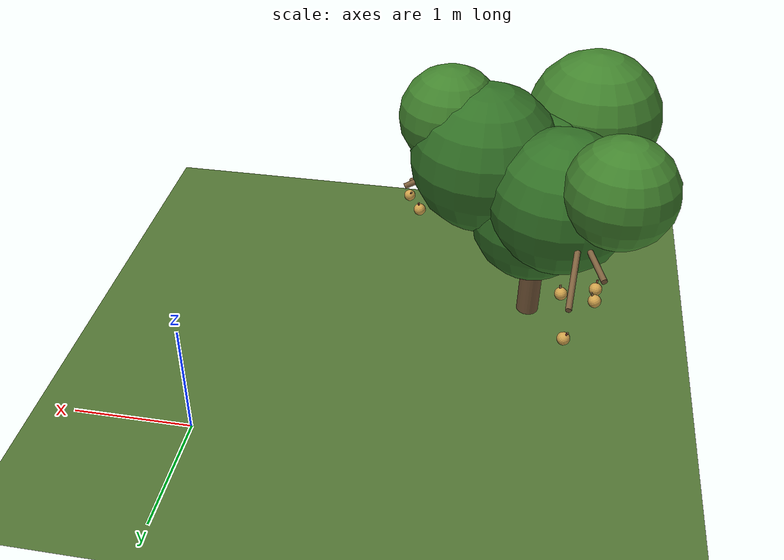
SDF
<sdf version="1.8">
 <world name="bagged_peach_orchard">
  <model name="ground">
   <static>true</static>
   <link name="link">
    <collision name="c">
     <geometry><plane><normal>0 0 1</normal><size>40.0 30.0</size></plane></geometry>
    </collision>
    <visual name="v">
     <geometry><plane><normal>0 0 1</normal><size>40.0 30.0</size></plane></geometry>
     <material>
      <ambient>0.1600 0.2300 0.1000 1</ambient>
      <diffuse>0.3200 0.4600 0.2000 1</diffuse>
      <specular>0.05 0.05 0.05 1</specular>
     </material>
    </visual>
   </link>
  </model>
  <model name="tree_r1_t1">
   <static>true</static>
   <link name="trunk">
    <visual name="trunk_v">
     <pose>-2.6032 -1.9987 0.3138 -0.0042 -0.0103 0.0000</pose>
     <geometry><cylinder><radius>0.0996</radius><length>0.6277</length></cylinder></geometry>
     <material>
      <ambient>0.2300 0.1700 0.1100 1</ambient>
      <diffuse>0.4600 0.3400 0.2200 1</diffuse>
      <specular>0.05 0.05 0.05 1</specular>
     </material>
    </visual>
    <collision name="trunk_v_c">
     <pose>-2.6032 -1.9987 0.3138 -0.0042 -0.0103 0.0000</pose>
     <geometry><cylinder><radius>0.0996</radius><length>0.6277</length></cylinder></geometry>
    </collision>
   </link>
   <link name="frame">
    <visual name="leader0_v">
     <pose>-2.1173 -2.0639 1.1878 0.1182 0.7144 0.0441</pose>
     <geometry><cylinder><radius>0.0500</radius><length>1.4932</length></cylinder></geometry>
     <material>
      <ambient>0.2300 0.1700 0.1100 1</ambient>
      <diffuse>0.4600 0.3400 0.2200 1</diffuse>
      <specular>0.05 0.05 0.05 1</specular>
     </material>
    </visual>
    <collision name="leader0_v_c">
     <pose>-2.1173 -2.0639 1.1878 0.1182 0.7144 0.0441</pose>
     <geometry><cylinder><radius>0.0500</radius><length>1.4932</length></cylinder></geometry>
    </collision>
    <visual name="leader1_v">
     <pose>-2.8658 -1.6284 1.1611 -0.6052 -0.3803 0.1200</pose>
     <geometry><cylinder><radius>0.0500</radius><length>1.3970</length></cylinder></geometry>
     <material>
      <ambient>0.2300 0.1700 0.1100 1</ambient>
      <diffuse>0.4600 0.3400 0.2200 1</diffuse>
      <specular>0.05 0.05 0.05 1</specular>
     </material>
    </visual>
    <collision name="leader1_v_c">
     <pose>-2.8658 -1.6284 1.1611 -0.6052 -0.3803 0.1200</pose>
     <geometry><cylinder><radius>0.0500</radius><length>1.3970</length></cylinder></geometry>
    </collision>
    <visual name="leader2_v">
     <pose>-2.7985 -2.4081 1.0493 0.7723 -0.3153 -0.1291</pose>
     <geometry><cylinder><radius>0.0500</radius><length>1.2383</length></cylinder></geometry>
     <material>
      <ambient>0.2300 0.1700 0.1100 1</ambient>
      <diffuse>0.4600 0.3400 0.2200 1</diffuse>
      <specular>0.05 0.05 0.05 1</specular>
     </material>
    </visual>
    <collision name="leader2_v_c">
     <pose>-2.7985 -2.4081 1.0493 0.7723 -0.3153 -0.1291</pose>
     <geometry><cylinder><radius>0.0500</radius><length>1.2383</length></cylinder></geometry>
    </collision>
    <visual name="branch0_v">
     <pose>-1.7518 -2.2881 1.0847 2.1071 0.9247 1.4388</pose>
     <geometry><cylinder><radius>0.0250</radius><length>0.8538</length></cylinder></geometry>
     <material>
      <ambient>0.2500 0.1900 0.1200 1</ambient>
      <diffuse>0.5000 0.3800 0.2400 1</diffuse>
      <specular>0.05 0.05 0.05 1</specular>
     </material>
    </visual>
    <visual name="branch1_v">
     <pose>-1.6610 -2.0212 1.3462 -2.5115 1.0743 -2.1402</pose>
     <geometry><cylinder><radius>0.0250</radius><length>0.5233</length></cylinder></geometry>
     <material>
      <ambient>0.2500 0.1900 0.1200 1</ambient>
      <diffuse>0.5000 0.3800 0.2400 1</diffuse>
      <specular>0.05 0.05 0.05 1</specular>
     </material>
    </visual>
    <visual name="branch2_v">
     <pose>-3.0344 -1.2309 1.2479 -1.6780 -0.3352 0.3724</pose>
     <geometry><cylinder><radius>0.0250</radius><length>0.6689</length></cylinder></geometry>
     <material>
      <ambient>0.2500 0.1900 0.1200 1</ambient>
      <diffuse>0.5000 0.3800 0.2400 1</diffuse>
      <specular>0.05 0.05 0.05 1</specular>
     </material>
    </visual>
    <visual name="branch3_v">
     <pose>-2.9201 -1.0805 1.2227 -1.8380 0.0728 -0.0954</pose>
     <geometry><cylinder><radius>0.0250</radius><length>0.8833</length></cylinder></geometry>
     <material>
      <ambient>0.2500 0.1900 0.1200 1</ambient>
      <diffuse>0.5000 0.3800 0.2400 1</diffuse>
      <specular>0.05 0.05 0.05 1</specular>
     </material>
    </visual>
    <visual name="branch4_v">
     <pose>-3.0885 -2.6666 1.0406 2.3541 -0.8825 -1.6988</pose>
     <geometry><cylinder><radius>0.0250</radius><length>0.6020</length></cylinder></geometry>
     <material>
      <ambient>0.2500 0.1900 0.1200 1</ambient>
      <diffuse>0.5000 0.3800 0.2400 1</diffuse>
      <specular>0.05 0.05 0.05 1</specular>
     </material>
    </visual>
    <visual name="branch5_v">
     <pose>-3.1177 -2.6013 1.1312 2.2787 -1.2647 -2.0197</pose>
     <geometry><cylinder><radius>0.0250</radius><length>0.5406</length></cylinder></geometry>
     <material>
      <ambient>0.2500 0.1900 0.1200 1</ambient>
      <diffuse>0.5000 0.3800 0.2400 1</diffuse>
      <specular>0.05 0.05 0.05 1</specular>
     </material>
    </visual>
    <visual name="twig0_v">
     <pose>-3.0659 -0.9236 1.0775 0.1227 0.4355 0.0272</pose>
     <geometry><cylinder><radius>0.0080</radius><length>0.0260</length></cylinder></geometry>
     <material>
      <ambient>0.2750 0.2250 0.1400 1</ambient>
      <diffuse>0.5500 0.4500 0.2800 1</diffuse>
      <specular>0.05 0.05 0.05 1</specular>
     </material>
    </visual>
    <visual name="twig1_v">
     <pose>-1.5572 -1.9579 1.0706 -0.1418 0.1384 -0.0098</pose>
     <geometry><cylinder><radius>0.0080</radius><length>0.0260</length></cylinder></geometry>
     <material>
      <ambient>0.2750 0.2250 0.1400 1</ambient>
      <diffuse>0.5500 0.4500 0.2800 1</diffuse>
      <specular>0.05 0.05 0.05 1</specular>
     </material>
    </visual>
    <visual name="twig2_v">
     <pose>-3.2098 -2.5792 0.9645 0.3478 -0.2543 -0.0449</pose>
     <geometry><cylinder><radius>0.0080</radius><length>0.0260</length></cylinder></geometry>
     <material>
      <ambient>0.2750 0.2250 0.1400 1</ambient>
      <diffuse>0.5500 0.4500 0.2800 1</diffuse>
      <specular>0.05 0.05 0.05 1</specular>
     </material>
    </visual>
    <visual name="twig3_v">
     <pose>-3.1823 -1.2652 1.5069 0.4742 0.0538 0.0130</pose>
     <geometry><cylinder><radius>0.0080</radius><length>0.0260</length></cylinder></geometry>
     <material>
      <ambient>0.2750 0.2250 0.1400 1</ambient>
      <diffuse>0.5500 0.4500 0.2800 1</diffuse>
      <specular>0.05 0.05 0.05 1</specular>
     </material>
    </visual>
    <visual name="twig4_v">
     <pose>-2.9044 -0.6592 0.8707 -0.1981 -0.3581 0.0360</pose>
     <geometry><cylinder><radius>0.0080</radius><length>0.0260</length></cylinder></geometry>
     <material>
      <ambient>0.2750 0.2250 0.1400 1</ambient>
      <diffuse>0.5500 0.4500 0.2800 1</diffuse>
      <specular>0.05 0.05 0.05 1</specular>
     </material>
    </visual>
    <visual name="twig5_v">
     <pose>-3.2519 -2.7476 0.8584 -0.4397 0.1339 -0.0300</pose>
     <geometry><cylinder><radius>0.0080</radius><length>0.0260</length></cylinder></geometry>
     <material>
      <ambient>0.2750 0.2250 0.1400 1</ambient>
      <diffuse>0.5500 0.4500 0.2800 1</diffuse>
      <specular>0.05 0.05 0.05 1</specular>
     </material>
    </visual>
    <visual name="twig6_v">
     <pose>-3.0440 -2.7886 1.3626 0.2239 -0.4893 -0.0561</pose>
     <geometry><cylinder><radius>0.0080</radius><length>0.0260</length></cylinder></geometry>
     <material>
      <ambient>0.2750 0.2250 0.1400 1</ambient>
      <diffuse>0.5500 0.4500 0.2800 1</diffuse>
      <specular>0.05 0.05 0.05 1</specular>
     </material>
    </visual>
    <visual name="twig7_v">
     <pose>-3.1153 -1.1728 1.0197 0.5413 -0.1164 -0.0323</pose>
     <geometry><cylinder><radius>0.0080</radius><length>0.0260</length></cylinder></geometry>
     <material>
      <ambient>0.2750 0.2250 0.1400 1</ambient>
      <diffuse>0.5500 0.4500 0.2800 1</diffuse>
      <specular>0.05 0.05 0.05 1</specular>
     </material>
    </visual>
    <visual name="twig8_v">
     <pose>-1.6672 -2.3821 0.8912 0.1288 0.0639 0.0041</pose>
     <geometry><cylinder><radius>0.0080</radius><length>0.0260</length></cylinder></geometry>
     <material>
      <ambient>0.2750 0.2250 0.1400 1</ambient>
      <diffuse>0.5500 0.4500 0.2800 1</diffuse>
      <specular>0.05 0.05 0.05 1</specular>
     </material>
    </visual>
    <visual name="twig9_v">
     <pose>-3.4785 -2.6725 0.8862 -0.3782 0.6521 -0.1293</pose>
     <geometry><cylinder><radius>0.0080</radius><length>0.0260</length></cylinder></geometry>
     <material>
      <ambient>0.2750 0.2250 0.1400 1</ambient>
      <diffuse>0.5500 0.4500 0.2800 1</diffuse>
      <specular>0.05 0.05 0.05 1</specular>
     </material>
    </visual>
    <visual name="twig10_v">
     <pose>-2.8276 -1.0669 1.0094 0.1396 0.1454 0.0102</pose>
     <geometry><cylinder><radius>0.0080</radius><length>0.0260</length></cylinder></geometry>
     <material>
      <ambient>0.2750 0.2250 0.1400 1</ambient>
      <diffuse>0.5500 0.4500 0.2800 1</diffuse>
      <specular>0.05 0.05 0.05 1</specular>
     </material>
    </visual>
    <visual name="twig11_v">
     <pose>-1.4150 -2.5010 0.8216 -0.6245 -0.2751 0.0893</pose>
     <geometry><cylinder><radius>0.0080</radius><length>0.0260</length></cylinder></geometry>
     <material>
      <ambient>0.2750 0.2250 0.1400 1</ambient>
      <diffuse>0.5500 0.4500 0.2800 1</diffuse>
      <specular>0.05 0.05 0.05 1</specular>
     </material>
    </visual>
   </link>
   <link name="canopy">
    <visual name="blob0_v">
     <pose>-2.0990 -2.1908 1.4740 0 0 0</pose>
     <geometry><sphere><radius>0.6599</radius></sphere></geometry>
     <material>
      <ambient>0.1000 0.2250 0.0750 1</ambient>
      <diffuse>0.2000 0.4500 0.1500 1</diffuse>
      <specular>0.05 0.05 0.05 1</specular>
     </material>
    </visual>
    <collision name="blob0_v_c">
     <pose>-2.0990 -2.1908 1.4740 0 0 0</pose>
     <geometry><sphere><radius>0.6071</radius></sphere></geometry>
    </collision>
    <visual name="blob1_v">
     <pose>-1.7701 -2.3134 1.7767 0 0 0</pose>
     <geometry><sphere><radius>0.4534</radius></sphere></geometry>
     <material>
      <ambient>0.1300 0.2600 0.0900 1</ambient>
      <diffuse>0.2600 0.5200 0.1800 1</diffuse>
      <specular>0.05 0.05 0.05 1</specular>
     </material>
    </visual>
    <collision name="blob1_v_c">
     <pose>-1.7701 -2.3134 1.7767 0 0 0</pose>
     <geometry><sphere><radius>0.4172</radius></sphere></geometry>
    </collision>
    <visual name="blob2_v">
     <pose>-2.7797 -1.7888 1.3558 0 0 0</pose>
     <geometry><sphere><radius>0.6220</radius></sphere></geometry>
     <material>
      <ambient>0.1000 0.2250 0.0750 1</ambient>
      <diffuse>0.2000 0.4500 0.1500 1</diffuse>
      <specular>0.05 0.05 0.05 1</specular>
     </material>
    </visual>
    <collision name="blob2_v_c">
     <pose>-2.7797 -1.7888 1.3558 0 0 0</pose>
     <geometry><sphere><radius>0.5723</radius></sphere></geometry>
    </collision>
    <visual name="blob3_v">
     <pose>-3.2097 -1.4045 1.7260 0 0 0</pose>
     <geometry><sphere><radius>0.4597</radius></sphere></geometry>
     <material>
      <ambient>0.1300 0.2600 0.0900 1</ambient>
      <diffuse>0.2600 0.5200 0.1800 1</diffuse>
      <specular>0.05 0.05 0.05 1</specular>
     </material>
    </visual>
    <collision name="blob3_v_c">
     <pose>-3.2097 -1.4045 1.7260 0 0 0</pose>
     <geometry><sphere><radius>0.4229</radius></sphere></geometry>
    </collision>
    <visual name="blob4_v">
     <pose>-2.6078 -2.3908 1.2201 0 0 0</pose>
     <geometry><sphere><radius>0.5838</radius></sphere></geometry>
     <material>
      <ambient>0.1000 0.2250 0.0750 1</ambient>
      <diffuse>0.2000 0.4500 0.1500 1</diffuse>
      <specular>0.05 0.05 0.05 1</specular>
     </material>
    </visual>
    <collision name="blob4_v_c">
     <pose>-2.6078 -2.3908 1.2201 0 0 0</pose>
     <geometry><sphere><radius>0.5371</radius></sphere></geometry>
    </collision>
    <visual name="blob5_v">
     <pose>-3.0134 -2.8824 1.5875 0 0 0</pose>
     <geometry><sphere><radius>0.6068</radius></sphere></geometry>
     <material>
      <ambient>0.1300 0.2600 0.0900 1</ambient>
      <diffuse>0.2600 0.5200 0.1800 1</diffuse>
      <specular>0.05 0.05 0.05 1</specular>
     </material>
    </visual>
    <collision name="blob5_v_c">
     <pose>-3.0134 -2.8824 1.5875 0 0 0</pose>
     <geometry><sphere><radius>0.5583</radius></sphere></geometry>
    </collision>
    <visual name="blob6_v">
     <pose>-2.5702 -1.9561 1.0440 0 0 0</pose>
     <geometry><sphere><radius>0.5476</radius></sphere></geometry>
     <material>
      <ambient>0.1000 0.2250 0.0750 1</ambient>
      <diffuse>0.2000 0.4500 0.1500 1</diffuse>
      <specular>0.05 0.05 0.05 1</specular>
     </material>
    </visual>
    <collision name="blob6_v_c">
     <pose>-2.5702 -1.9561 1.0440 0 0 0</pose>
     <geometry><sphere><radius>0.5038</radius></sphere></geometry>
    </collision>
   </link>
   <link name="bag_r1_t1_b00">
    <pose>-3.0713 -0.9222 1.0658 0.1227 0.4355 0.0272</pose>
    <visual name="paper">
     <pose>0 0 -0.0520 0 0 0</pose>
     <geometry><sphere><radius>0.0520</radius></sphere></geometry>
     <material>
      <ambient>0.4100 0.3200 0.1500 1</ambient>
      <diffuse>0.8200 0.6400 0.3000 1</diffuse>
      <specular>0.05 0.05 0.05 1</specular>
     </material>
    </visual>
    <visual name="twist">
     <pose>0 0 0.0100 0 0 0</pose>
     <geometry><cylinder><radius>0.0080</radius><length>0.0260</length></cylinder></geometry>
     <material>
      <ambient>0.2750 0.1000 0.0750 1</ambient>
      <diffuse>0.5500 0.2000 0.1500 1</diffuse>
      <specular>0.05 0.05 0.05 1</specular>
     </material>
    </visual>
    <collision name="paper_c">
     <pose>0 0 -0.0520 0 0 0</pose>
     <geometry><sphere><radius>0.0520</radius></sphere></geometry>
    </collision>
   </link>
   <link name="bag_r1_t1_b01">
    <pose>-1.5590 -1.9597 1.0578 -0.1418 0.1384 -0.0098</pose>
    <visual name="paper">
     <pose>0 0 -0.0520 0 0 0</pose>
     <geometry><sphere><radius>0.0520</radius></sphere></geometry>
     <material>
      <ambient>0.4100 0.3200 0.1500 1</ambient>
      <diffuse>0.8200 0.6400 0.3000 1</diffuse>
      <specular>0.05 0.05 0.05 1</specular>
     </material>
    </visual>
    <visual name="twist">
     <pose>0 0 0.0100 0 0 0</pose>
     <geometry><cylinder><radius>0.0080</radius><length>0.0260</length></cylinder></geometry>
     <material>
      <ambient>0.2750 0.1000 0.0750 1</ambient>
      <diffuse>0.5500 0.2000 0.1500 1</diffuse>
      <specular>0.05 0.05 0.05 1</specular>
     </material>
    </visual>
    <collision name="paper_c">
     <pose>0 0 -0.0520 0 0 0</pose>
     <geometry><sphere><radius>0.0520</radius></sphere></geometry>
    </collision>
   </link>
   <link name="bag_r1_t1_b02">
    <pose>-3.2066 -2.5749 0.9527 0.3478 -0.2543 -0.0449</pose>
    <visual name="paper">
     <pose>0 0 -0.0520 0 0 0</pose>
     <geometry><sphere><radius>0.0520</radius></sphere></geometry>
     <material>
      <ambient>0.4100 0.3200 0.1500 1</ambient>
      <diffuse>0.8200 0.6400 0.3000 1</diffuse>
      <specular>0.05 0.05 0.05 1</specular>
     </material>
    </visual>
    <visual name="twist">
     <pose>0 0 0.0100 0 0 0</pose>
     <geometry><cylinder><radius>0.0080</radius><length>0.0260</length></cylinder></geometry>
     <material>
      <ambient>0.2750 0.1000 0.0750 1</ambient>
      <diffuse>0.5500 0.2000 0.1500 1</diffuse>
      <specular>0.05 0.05 0.05 1</specular>
     </material>
    </visual>
    <collision name="paper_c">
     <pose>0 0 -0.0520 0 0 0</pose>
     <geometry><sphere><radius>0.0520</radius></sphere></geometry>
    </collision>
   </link>
   <link name="bag_r1_t1_b03">
    <pose>-3.1830 -1.2592 1.4954 0.4742 0.0538 0.0130</pose>
    <visual name="paper">
     <pose>0 0 -0.0520 0 0 0</pose>
     <geometry><sphere><radius>0.0520</radius></sphere></geometry>
     <material>
      <ambient>0.4100 0.3200 0.1500 1</ambient>
      <diffuse>0.8200 0.6400 0.3000 1</diffuse>
      <specular>0.05 0.05 0.05 1</specular>
     </material>
    </visual>
    <visual name="twist">
     <pose>0 0 0.0100 0 0 0</pose>
     <geometry><cylinder><radius>0.0080</radius><length>0.0260</length></cylinder></geometry>
     <material>
      <ambient>0.2750 0.1000 0.0750 1</ambient>
      <diffuse>0.5500 0.2000 0.1500 1</diffuse>
      <specular>0.05 0.05 0.05 1</specular>
     </material>
    </visual>
    <collision name="paper_c">
     <pose>0 0 -0.0520 0 0 0</pose>
     <geometry><sphere><radius>0.0520</radius></sphere></geometry>
    </collision>
   </link>
   <link name="bag_r1_t1_b04">
    <pose>-2.8998 -0.6616 0.8587 -0.1981 -0.3581 0.0360</pose>
    <visual name="paper">
     <pose>0 0 -0.0520 0 0 0</pose>
     <geometry><sphere><radius>0.0520</radius></sphere></geometry>
     <material>
      <ambient>0.4100 0.3200 0.1500 1</ambient>
      <diffuse>0.8200 0.6400 0.3000 1</diffuse>
      <specular>0.05 0.05 0.05 1</specular>
     </material>
    </visual>
    <visual name="twist">
     <pose>0 0 0.0100 0 0 0</pose>
     <geometry><cylinder><radius>0.0080</radius><length>0.0260</length></cylinder></geometry>
     <material>
      <ambient>0.2750 0.1000 0.0750 1</ambient>
      <diffuse>0.5500 0.2000 0.1500 1</diffuse>
      <specular>0.05 0.05 0.05 1</specular>
     </material>
    </visual>
    <collision name="paper_c">
     <pose>0 0 -0.0520 0 0 0</pose>
     <geometry><sphere><radius>0.0520</radius></sphere></geometry>
    </collision>
   </link>
   <link name="bag_r1_t1_b05">
    <pose>-3.2536 -2.7531 0.8468 -0.4397 0.1339 -0.0300</pose>
    <visual name="paper">
     <pose>0 0 -0.0520 0 0 0</pose>
     <geometry><sphere><radius>0.0520</radius></sphere></geometry>
     <material>
      <ambient>0.4100 0.3200 0.1500 1</ambient>
      <diffuse>0.8200 0.6400 0.3000 1</diffuse>
      <specular>0.05 0.05 0.05 1</specular>
     </material>
    </visual>
    <visual name="twist">
     <pose>0 0 0.0100 0 0 0</pose>
     <geometry><cylinder><radius>0.0080</radius><length>0.0260</length></cylinder></geometry>
     <material>
      <ambient>0.2750 0.1000 0.0750 1</ambient>
      <diffuse>0.5500 0.2000 0.1500 1</diffuse>
      <specular>0.05 0.05 0.05 1</specular>
     </material>
    </visual>
    <collision name="paper_c">
     <pose>0 0 -0.0520 0 0 0</pose>
     <geometry><sphere><radius>0.0520</radius></sphere></geometry>
    </collision>
   </link>
   <link name="bag_r1_t1_b06">
    <pose>-3.0379 -2.7861 1.3515 0.2239 -0.4893 -0.0561</pose>
    <visual name="paper">
     <pose>0 0 -0.0520 0 0 0</pose>
     <geometry><sphere><radius>0.0520</radius></sphere></geometry>
     <material>
      <ambient>0.4100 0.3200 0.1500 1</ambient>
      <diffuse>0.8200 0.6400 0.3000 1</diffuse>
      <specular>0.05 0.05 0.05 1</specular>
     </material>
    </visual>
    <visual name="twist">
     <pose>0 0 0.0100 0 0 0</pose>
     <geometry><cylinder><radius>0.0080</radius><length>0.0260</length></cylinder></geometry>
     <material>
      <ambient>0.2750 0.1000 0.0750 1</ambient>
      <diffuse>0.5500 0.2000 0.1500 1</diffuse>
      <specular>0.05 0.05 0.05 1</specular>
     </material>
    </visual>
    <collision name="paper_c">
     <pose>0 0 -0.0520 0 0 0</pose>
     <geometry><sphere><radius>0.0520</radius></sphere></geometry>
    </collision>
   </link>
   <link name="bag_r1_t1_b07">
    <pose>-3.1137 -1.1662 1.0087 0.5413 -0.1164 -0.0323</pose>
    <visual name="paper">
     <pose>0 0 -0.0520 0 0 0</pose>
     <geometry><sphere><radius>0.0520</radius></sphere></geometry>
     <material>
      <ambient>0.4100 0.3200 0.1500 1</ambient>
      <diffuse>0.8200 0.6400 0.3000 1</diffuse>
      <specular>0.05 0.05 0.05 1</specular>
     </material>
    </visual>
    <visual name="twist">
     <pose>0 0 0.0100 0 0 0</pose>
     <geometry><cylinder><radius>0.0080</radius><length>0.0260</length></cylinder></geometry>
     <material>
      <ambient>0.2750 0.1000 0.0750 1</ambient>
      <diffuse>0.5500 0.2000 0.1500 1</diffuse>
      <specular>0.05 0.05 0.05 1</specular>
     </material>
    </visual>
    <collision name="paper_c">
     <pose>0 0 -0.0520 0 0 0</pose>
     <geometry><sphere><radius>0.0520</radius></sphere></geometry>
    </collision>
   </link>
   <link name="bag_r1_t1_b08">
    <pose>-1.6680 -2.3804 0.8784 0.1288 0.0639 0.0041</pose>
    <visual name="paper">
     <pose>0 0 -0.0520 0 0 0</pose>
     <geometry><sphere><radius>0.0520</radius></sphere></geometry>
     <material>
      <ambient>0.4100 0.3200 0.1500 1</ambient>
      <diffuse>0.8200 0.6400 0.3000 1</diffuse>
      <specular>0.05 0.05 0.05 1</specular>
     </material>
    </visual>
    <visual name="twist">
     <pose>0 0 0.0100 0 0 0</pose>
     <geometry><cylinder><radius>0.0080</radius><length>0.0260</length></cylinder></geometry>
     <material>
      <ambient>0.2750 0.1000 0.0750 1</ambient>
      <diffuse>0.5500 0.2000 0.1500 1</diffuse>
      <specular>0.05 0.05 0.05 1</specular>
     </material>
    </visual>
    <collision name="paper_c">
     <pose>0 0 -0.0520 0 0 0</pose>
     <geometry><sphere><radius>0.0520</radius></sphere></geometry>
    </collision>
   </link>
   <link name="bag_r1_t1_b09">
    <pose>-3.4864 -2.6764 0.8766 -0.3782 0.6521 -0.1293</pose>
    <visual name="paper">
     <pose>0 0 -0.0520 0 0 0</pose>
     <geometry><sphere><radius>0.0520</radius></sphere></geometry>
     <material>
      <ambient>0.4100 0.3200 0.1500 1</ambient>
      <diffuse>0.8200 0.6400 0.3000 1</diffuse>
      <specular>0.05 0.05 0.05 1</specular>
     </material>
    </visual>
    <visual name="twist">
     <pose>0 0 0.0100 0 0 0</pose>
     <geometry><cylinder><radius>0.0080</radius><length>0.0260</length></cylinder></geometry>
     <material>
      <ambient>0.2750 0.1000 0.0750 1</ambient>
      <diffuse>0.5500 0.2000 0.1500 1</diffuse>
      <specular>0.05 0.05 0.05 1</specular>
     </material>
    </visual>
    <collision name="paper_c">
     <pose>0 0 -0.0520 0 0 0</pose>
     <geometry><sphere><radius>0.0520</radius></sphere></geometry>
    </collision>
   </link>
   <link name="bag_r1_t1_b10">
    <pose>-2.8295 -1.0652 0.9966 0.1396 0.1454 0.0102</pose>
    <visual name="paper">
     <pose>0 0 -0.0520 0 0 0</pose>
     <geometry><sphere><radius>0.0520</radius></sphere></geometry>
     <material>
      <ambient>0.4100 0.3200 0.1500 1</ambient>
      <diffuse>0.8200 0.6400 0.3000 1</diffuse>
      <specular>0.05 0.05 0.05 1</specular>
     </material>
    </visual>
    <visual name="twist">
     <pose>0 0 0.0100 0 0 0</pose>
     <geometry><cylinder><radius>0.0080</radius><length>0.0260</length></cylinder></geometry>
     <material>
      <ambient>0.2750 0.1000 0.0750 1</ambient>
      <diffuse>0.5500 0.2000 0.1500 1</diffuse>
      <specular>0.05 0.05 0.05 1</specular>
     </material>
    </visual>
    <collision name="paper_c">
     <pose>0 0 -0.0520 0 0 0</pose>
     <geometry><sphere><radius>0.0520</radius></sphere></geometry>
    </collision>
   </link>
   <link name="bag_r1_t1_b11">
    <pose>-1.4114 -2.5083 0.8115 -0.6245 -0.2751 0.0893</pose>
    <visual name="paper">
     <pose>0 0 -0.0520 0 0 0</pose>
     <geometry><sphere><radius>0.0520</radius></sphere></geometry>
     <material>
      <ambient>0.4100 0.3200 0.1500 1</ambient>
      <diffuse>0.8200 0.6400 0.3000 1</diffuse>
      <specular>0.05 0.05 0.05 1</specular>
     </material>
    </visual>
    <visual name="twist">
     <pose>0 0 0.0100 0 0 0</pose>
     <geometry><cylinder><radius>0.0080</radius><length>0.0260</length></cylinder></geometry>
     <material>
      <ambient>0.2750 0.1000 0.0750 1</ambient>
      <diffuse>0.5500 0.2000 0.1500 1</diffuse>
      <specular>0.05 0.05 0.05 1</specular>
     </material>
    </visual>
    <collision name="paper_c">
     <pose>0 0 -0.0520 0 0 0</pose>
     <geometry><sphere><radius>0.0520</radius></sphere></geometry>
    </collision>
   </link>
  </model>
 </world>
</sdf>
